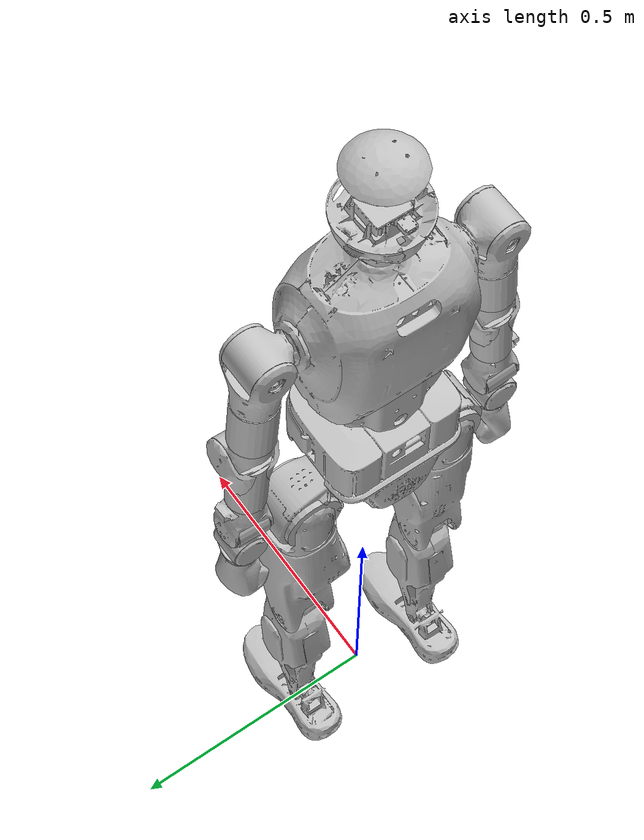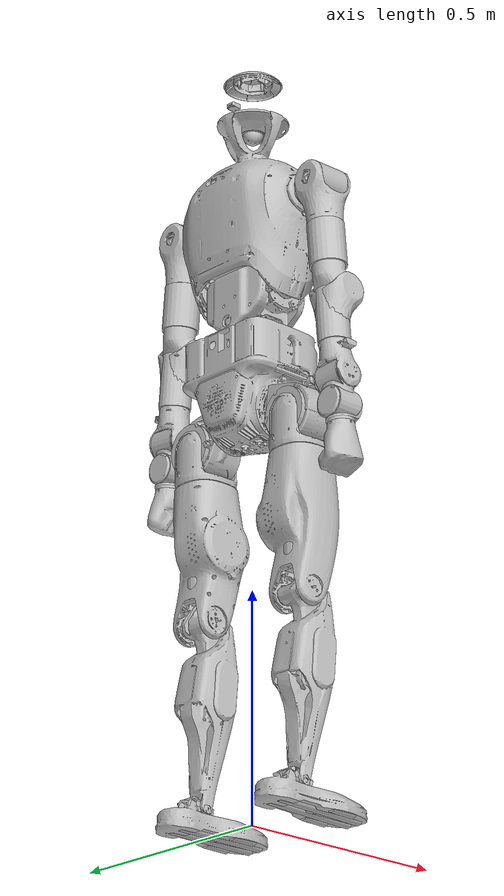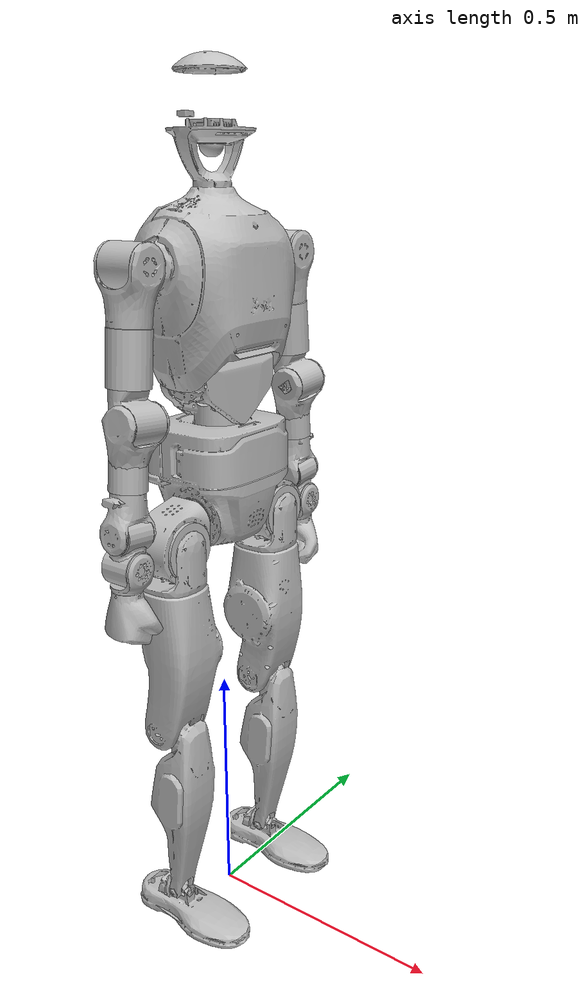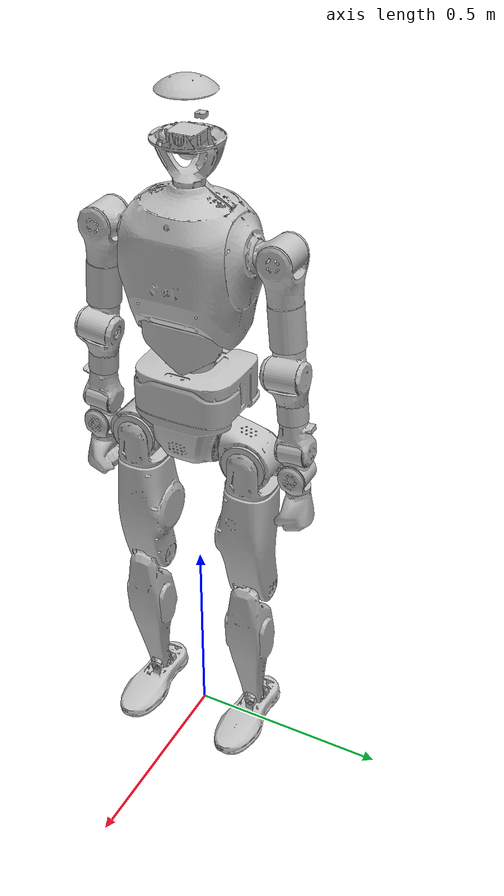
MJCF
<?xml version='1.0' encoding='UTF-8'?>
<mujoco model="tiangong3_29dof">
  <compiler angle="radian" meshdir="meshes/"/>
  <option integrator="implicitfast" timestep="0.001" iterations="100" solver="CG" gravity="0 0 -9.81">
  <flag contact="enable" energy="enable"/>
  </option>
  <default>
    <default class="large_actuator">
      <position kp="2000" kv="100" forcerange="-105 105"/>
    </default>
    <default class="small_actuator">
      <position kp="500" kv="50" forcerange="-52 52"/>
    </default>
  </default>

  <default>
    <default class="arm_motor">
      <joint damping="1" armature="0.1" frictionloss="0.1"/>
    </default>
    <default class="wrist_motor">
      <joint damping="1" armature="0.0236" frictionloss="0.1"/>
    </default>
    <default class="waist_motor">
      <joint damping="1" armature="0.17" frictionloss="0.1"/>
    </default>
    <default class="hip_pitch_motor">
      <joint damping="1" armature="0.24" frictionloss="0.1"/>
    </default>
    <default class="hip_roll_motor">
      <joint damping="1" armature="0.24" frictionloss="0.1"/>
    </default>
    <default class="hip_yaw_motor">
      <joint damping="1" armature="0.18" frictionloss="0.1"/>
    </default>
    <default class="knee_motor">
      <joint damping="1" armature="0.37" frictionloss="0.1"/>
    </default>
    <default class="ankle_motor">
      <joint damping="1" armature="0.032" frictionloss="0.1"/>
    </default>
  </default>

  <actuator><motor name="hip_pitch_l_joint" joint="hip_pitch_l_joint" ctrlrange="-200 200"/><motor name="hip_roll_l_joint" joint="hip_roll_l_joint" ctrlrange="-200 200"/><motor name="hip_yaw_l_joint" joint="hip_yaw_l_joint" ctrlrange="-142 142"/><motor name="knee_pitch_l_joint" joint="knee_pitch_l_joint" ctrlrange="-330 330"/><motor name="ankle_pitch_l_joint" joint="ankle_pitch_l_joint" ctrlrange="-55 55"/><motor name="ankle_roll_l_joint" joint="ankle_roll_l_joint" ctrlrange="-55 55"/><motor name="hip_pitch_r_joint" joint="hip_pitch_r_joint" ctrlrange="-200 200"/><motor name="hip_roll_r_joint" joint="hip_roll_r_joint" ctrlrange="-200 200"/><motor name="hip_yaw_r_joint" joint="hip_yaw_r_joint" ctrlrange="-142 142"/><motor name="knee_pitch_r_joint" joint="knee_pitch_r_joint" ctrlrange="-330 330"/><motor name="ankle_pitch_r_joint" joint="ankle_pitch_r_joint" ctrlrange="-55 55"/><motor name="ankle_roll_r_joint" joint="ankle_roll_r_joint" ctrlrange="-55 55"/><motor name="waist_yaw_joint" joint="waist_yaw_joint" ctrlrange="-91 91"/><motor name="waist_roll_joint" joint="waist_roll_joint" ctrlrange="-150 150"/><motor name="waist_pitch_joint" joint="waist_pitch_joint" ctrlrange="-150 150"/><motor name="shoulder_pitch_l_joint" joint="shoulder_pitch_l_joint" ctrlrange="-90 90"/><motor name="shoulder_roll_l_joint" joint="shoulder_roll_l_joint" ctrlrange="-90 90"/><motor name="shoulder_yaw_l_joint" joint="shoulder_yaw_l_joint" ctrlrange="-50 50"/><motor name="elbow_pitch_l_joint" joint="elbow_pitch_l_joint" ctrlrange="-50 50"/><motor name="elbow_yaw_l_joint" joint="elbow_yaw_l_joint" ctrlrange="-25 25"/><motor name="wrist_pitch_l_joint" joint="wrist_pitch_l_joint" ctrlrange="-25 25"/><motor name="wrist_roll_l_joint" joint="wrist_roll_l_joint" ctrlrange="-25 25"/><motor name="shoulder_pitch_r_joint" joint="shoulder_pitch_r_joint" ctrlrange="-90 90"/><motor name="shoulder_roll_r_joint" joint="shoulder_roll_r_joint" ctrlrange="-90 90"/><motor name="shoulder_yaw_r_joint" joint="shoulder_yaw_r_joint" ctrlrange="-50 50"/><motor name="elbow_pitch_r_joint" joint="elbow_pitch_r_joint" ctrlrange="-50 50"/><motor name="elbow_yaw_r_joint" joint="elbow_yaw_r_joint" ctrlrange="-25 25"/><motor name="wrist_pitch_r_joint" joint="wrist_pitch_r_joint" ctrlrange="-25 25"/><motor name="wrist_roll_r_joint" joint="wrist_roll_r_joint" ctrlrange="-25 25"/></actuator><asset>
    <texture name="texplane" type="2d" builtin="checker" rgb1=".2 .3 .4" rgb2=".1 0.15 0.2" width="512" height="512" mark="cross" markrgb=".8 .8 .8"/>
    <texture name="texplane2" type="2d" builtin="checker" rgb1="1 0.3137 0.1843" rgb2="0.0 0.30196 0.38039" width="512" height="512" mark="cross" markrgb=".8 .8 .8"/>
    <material name="matplane" reflectance="0." texture="texplane" texrepeat="1 1" texuniform="true"/>
    <material name="matplane2" reflectance="0.1" texture="texplane2" texrepeat="1 1" texuniform="true"/>

    <mesh name="pelvis" file="pelvis.STL"/>
    <mesh name="hip_pitch_l_link" file="hip_pitch_l_link.STL"/>
    <mesh name="hip_roll_l_link" file="hip_roll_l_link.STL"/>
    <mesh name="hip_yaw_l_link" file="hip_yaw_l_link.STL"/>
    <mesh name="knee_pitch_l_link" file="knee_pitch_l_link.STL"/>
    <mesh name="ankle_pitch_l_link" file="ankle_pitch_l_link.STL"/>
    <mesh name="ankle_roll_l_link" file="ankle_roll_l_link.STL"/>
    <mesh name="hip_pitch_r_link" file="hip_pitch_r_link.STL"/>
    <mesh name="hip_roll_r_link" file="hip_roll_r_link.STL"/>
    <mesh name="hip_yaw_r_link" file="hip_yaw_r_link.STL"/>
    <mesh name="knee_pitch_r_link" file="knee_pitch_r_link.STL"/>
    <mesh name="ankle_pitch_r_link" file="ankle_pitch_r_link.STL"/>
    <mesh name="ankle_roll_r_link" file="ankle_roll_r_link.STL"/>
    <mesh name="imu_waist_link" file="imu_waist_link.STL"/>
    <mesh name="waist_yaw_link" file="waist_yaw_link.STL"/>
    <mesh name="waist_roll_link" file="waist_roll_link.STL"/>
    <mesh name="waist_pitch_link" file="waist_pitch_link.STL"/>
    <mesh name="camera_body_front_link" file="camera_body_front_link.STL"/>
    <mesh name="imu_head_link" file="imu_head_link.STL"/>
    <mesh name="radar_head_link" file="radar_head_link.STL"/>
    <mesh name="head_yaw_link" file="head_yaw_link.STL"/>
    <mesh name="head_pitch_link" file="head_pitch_link.STL"/>
    <mesh name="camera_head_link" file="camera_head_link.STL"/>
    <mesh name="shoulder_pitch_l_link" file="shoulder_pitch_l_link.STL"/>
    <mesh name="shoulder_roll_l_link" file="shoulder_roll_l_link.STL"/>
    <mesh name="shoulder_yaw_l_link" file="shoulder_yaw_l_link.STL"/>
    <mesh name="elbow_pitch_l_link" file="elbow_pitch_l_link.STL"/>
    <mesh name="elbow_yaw_l_link" file="elbow_yaw_l_link.STL"/>
    <mesh name="wrist_pitch_l_link" file="wrist_pitch_l_link.STL"/>
    <mesh name="wrist_roll_l_link" file="wrist_roll_l_link.STL"/>
    <mesh name="left_tcp_link" file="left_tcp_link.STL"/>
    <mesh name="shoulder_pitch_r_link" file="shoulder_pitch_r_link.STL"/>
    <mesh name="shoulder_roll_r_link" file="shoulder_roll_r_link.STL"/>
    <mesh name="shoulder_yaw_r_link" file="shoulder_yaw_r_link.STL"/>
    <mesh name="elbow_pitch_r_link" file="elbow_pitch_r_link.STL"/>
    <mesh name="elbow_yaw_r_link" file="elbow_yaw_r_link.STL"/>
    <mesh name="wrist_pitch_r_link" file="wrist_pitch_r_link.STL"/>
    <mesh name="wrist_roll_r_link" file="wrist_roll_r_link.STL"/>
    <mesh name="right_tcp_link" file="right_tcp_link.STL"/>
  </asset>

  <worldbody>
    <body name="pelvis" pos="0 0 1">
      <inertial pos="-0.000980697 0.00034548 -0.0546304" quat="0.999055 0.00159355 0.0310332 -0.030378" mass="11.5366" diaginertia="0.0709017 0.0648376 0.0499767"/>
      <joint name="pelvis_to_world_joint" type="free" limited="false" actuatorfrclimited="false"/>
      <geom type="mesh" contype="0" conaffinity="0" group="1" density="0" rgba="0.752941 0.752941 0.752941 1" mesh="pelvis"/>
      <geom type="mesh" rgba="0.752941 0.752941 0.752941 1" mesh="pelvis"/>
      <geom pos="-0.081641 -0.00010952 -0.063057" quat="-2.59903e-06 -0.707565 0.706648 2.59566e-06" type="mesh" contype="0" conaffinity="0" group="1" density="0" rgba="0.752941 0.752941 0.752941 1" mesh="imu_waist_link"/>
      <site name="imu" size="0.01" pos="0.0 0.0 0.0"/>
      <body name="hip_pitch_l_link" pos="-0.00010305 0.076815 -0.11847" quat="0.996195 -0.0871543 -5.84587e-05 0.000668198">
        <inertial pos="0.009185 0.069598 -0.024259" quat="0.850127 0.523369 -0.0526812 -0.0243712" mass="2.37312" diaginertia="0.00506726 0.00389537 0.00347837"/>
        <joint name="hip_pitch_l_joint" class="hip_pitch_motor" pos="0 0 0" axis="0 1 0" range="-3.05433 2.79253"/>
        <geom type="mesh" contype="0" conaffinity="0" group="1" density="0" rgba="0.752941 0.752941 0.752941 1" mesh="hip_pitch_l_link"/>
        <body name="hip_roll_l_link" pos="0 0.073992 -0.026966" quat="0.996195 0.0871543 0 0">
          <inertial pos="-0.001737 -9.9e-05 -0.038553" quat="0.493093 0.509072 0.50841 0.489105" mass="0.539594" diaginertia="0.00168502 0.00140946 0.00104053"/>
          <joint name="hip_roll_l_joint" class="hip_roll_motor" pos="0 0 0" axis="1 0 0" range="-0.418879 2.61799"/>
          <geom type="mesh" contype="0" conaffinity="0" group="1" density="0" rgba="0.752941 0.752941 0.752941 1" mesh="hip_roll_l_link"/>
          <geom size="0.055 0.05" quat="0.707107 0 0.707107 0" type="cylinder" rgba="0.752941 0.752941 0.752941 1"/>
          <body name="hip_yaw_l_link" pos="0 0 -0.0785">
            <inertial pos="0.001492 -0.023508 -0.126309" quat="0.997142 -0.048314 -0.00119644 -0.0580702" mass="5.56215" diaginertia="0.0418929 0.0395442 0.0134839"/>
            <joint name="hip_yaw_l_joint" class="hip_yaw_motor" pos="0 0 0" axis="0 0 1" range="-1.39626 4.45059"/>
            <geom type="mesh" contype="0" conaffinity="0" group="1" density="0" rgba="0.752941 0.752941 0.752941 1" mesh="hip_yaw_l_link"/>
            <geom size="0.04 0.1" pos="0 0 -0.15" type="cylinder" rgba="0.752941 0.752941 0.752941 1"/>
            <body name="knee_pitch_l_link" pos="-0.012927 0 -0.30599" quat="0.999958 0 0.00920887 0">
              <inertial pos="0.024251 0.000717 -0.15523" quat="0.688202 0.0100453 0.0212912 0.725137" mass="2.94534" diaginertia="0.032453 0.0322551 0.00336394"/>
              <joint name="knee_pitch_l_joint" class="knee_motor" pos="0 0 0" axis="0 1 0" range="-0.0872665 2.53073"/>
              <geom type="mesh" contype="0" conaffinity="0" group="1" density="0" rgba="0.752941 0.752941 0.752941 1" mesh="knee_pitch_l_link"/>
              <geom type="mesh" rgba="0.752941 0.752941 0.752941 1" mesh="knee_pitch_l_link"/>
              <body name="ankle_pitch_l_link" pos="0.0073682 0 -0.39993">
                <inertial pos="0 0 0" quat="0 0.707107 0 0.707107" mass="0.142658" diaginertia="4.9e-05 3.2e-05 2.3e-05"/>
                <joint name="ankle_pitch_l_joint" class="ankle_motor" pos="0 0 0" axis="0 1 0" range="-1.18682 0.523599"/>
                <geom type="mesh" contype="0" conaffinity="0" group="1" density="0" rgba="0.752941 0.752941 0.752941 1" mesh="ankle_pitch_l_link"/>
                <body name="ankle_roll_l_link">
                  <inertial pos="0.024536 -1.7e-05 -0.033593" quat="0.000973792 0.727447 0.00122134 0.686162" mass="0.888892" diaginertia="0.00514091 0.004839 0.000764092"/>
                  <joint name="ankle_roll_l_joint" class="ankle_motor" pos="0 0 0" axis="1 0 0" range="-0.523599 0.523599"/>
                  <geom type="mesh" contype="0" conaffinity="0" group="1" density="0" rgba="0.752941 0.752941 0.752941 1" mesh="ankle_roll_l_link"/>
                  <geom name="foot_left_front_outer" size="0.012 0.03" pos="0.085 -0.04 -0.046" quat="0.707105 0 0.707108 0" type="cylinder" rgba="0.752941 0.752941 0.752941 1"/>
                  <geom name="foot_left_front_inner" size="0.012 0.03" pos="0.085 0.04 -0.046" quat="0.707105 0 0.707108 0" type="cylinder" rgba="0.752941 0.752941 0.752941 1"/>
                  <geom name="foot_left_strip_outer" size="0.012 0.11" pos="0.045 -0.015 -0.046" quat="0.707105 0 -0.707108 0" type="cylinder" rgba="0.752941 0.752941 0.752941 1"/>
                  <geom name="foot_left_strip_inner" size="0.012 0.11" pos="0.045 0.015 -0.046" quat="0.707105 0 -0.707108 0" type="cylinder" rgba="0.752941 0.752941 0.752941 1"/>
                </body>
              </body>
            </body>
          </body>
        </body>
      </body>
      <body name="hip_pitch_r_link" pos="0.00010305 -0.076815 -0.11847" quat="0.996195 0.0871543 5.84587e-05 0.000668198">
        <inertial pos="0.009185 -0.069598 -0.024259" quat="0.523369 0.850127 0.0243712 0.0526812" mass="2.37312" diaginertia="0.00506726 0.00389537 0.00347837"/>
        <joint name="hip_pitch_r_joint" class="hip_pitch_motor" pos="0 0 0" axis="0 1 0" range="-3.05433 2.79253"/>
        <geom type="mesh" contype="0" conaffinity="0" group="1" density="0" rgba="0.752941 0.752941 0.752941 1" mesh="hip_pitch_r_link"/>
        <body name="hip_roll_r_link" pos="0 -0.073992 -0.026966" quat="0.996195 -0.0871543 0 0">
          <inertial pos="-0.001737 9.9e-05 -0.038553" quat="0.489105 0.50841 0.509072 0.493093" mass="0.539594" diaginertia="0.00168502 0.00140946 0.00104053"/>
          <joint name="hip_roll_r_joint" class="hip_roll_motor" pos="0 0 0" axis="1 0 0" range="-2.61799 0.418879"/>
          <geom type="mesh" contype="0" conaffinity="0" group="1" density="0" rgba="0.752941 0.752941 0.752941 1" mesh="hip_roll_r_link"/>
          <geom size="0.055 0.05" quat="0.707107 0 0.707107 0" type="cylinder" rgba="0.752941 0.752941 0.752941 1"/>
          <body name="hip_yaw_r_link" pos="0 0 -0.0785">
            <inertial pos="0.001492 0.023508 -0.126309" quat="0.997142 0.048314 -0.00119644 0.0580702" mass="5.56215" diaginertia="0.0418929 0.0395442 0.0134839"/>
            <joint name="hip_yaw_r_joint" class="hip_yaw_motor" pos="0 0 0" axis="0 0 1" range="-4.45059 1.39626"/>
            <geom type="mesh" contype="0" conaffinity="0" group="1" density="0" rgba="0.752941 0.752941 0.752941 1" mesh="hip_yaw_r_link"/>
            <geom size="0.04 0.1" pos="0 0 -0.15" type="cylinder" rgba="0.752941 0.752941 0.752941 1"/>
            <body name="knee_pitch_r_link" pos="-0.012927 0 -0.30599" quat="0.999835 0 0.018192 0">
              <inertial pos="0.024251 -0.000717 -0.15523" quat="0.725137 0.0212912 0.0100453 0.688202" mass="2.94534" diaginertia="0.032453 0.0322551 0.00336394"/>
              <joint name="knee_pitch_r_joint" class="knee_motor" pos="0 0 0" axis="0 1 0" range="-0.0872665 2.53073"/>
              <geom type="mesh" contype="0" conaffinity="0" group="1" density="0" rgba="0.752941 0.752941 0.752941 1" mesh="knee_pitch_r_link"/>
              <geom type="mesh" rgba="0.752941 0.752941 0.752941 1" mesh="knee_pitch_r_link"/>
              <body name="ankle_pitch_r_link" pos="0.014553 0 -0.39974">
                <inertial pos="0 0 0" quat="0 0.707107 0 0.707107" mass="0.142658" diaginertia="4.9e-05 3.2e-05 2.3e-05"/>
                <joint name="ankle_pitch_r_joint" class="ankle_motor" pos="0 0 0" axis="0 1 0" range="-1.18682 0.523599"/>
                <geom type="mesh" contype="0" conaffinity="0" group="1" density="0" rgba="0.752941 0.752941 0.752941 1" mesh="ankle_pitch_r_link"/>
                <body name="ankle_roll_r_link">
                  <inertial pos="0.024536 1.7e-05 -0.033593" quat="-0.000973792 0.727447 -0.00122134 0.686162" mass="0.888892" diaginertia="0.00514091 0.004839 0.000764092"/>
                  <joint name="ankle_roll_r_joint" class="ankle_motor" pos="0 0 0" axis="1 0 0" range="-0.523599 0.523599"/>
                  <geom type="mesh" contype="0" conaffinity="0" group="1" density="0" rgba="0.752941 0.752941 0.752941 1" mesh="ankle_roll_r_link"/>
                  <geom name="foot_right_front_outer" size="0.012 0.03" pos="0.085 -0.04 -0.046" quat="0.707105 0 0.707108 0" type="cylinder" rgba="0.752941 0.752941 0.752941 1"/>
                  <geom name="foot_right_front_inner" size="0.012 0.03" pos="0.085 0.04 -0.046" quat="0.707105 0 0.707108 0" type="cylinder" rgba="0.752941 0.752941 0.752941 1"/>
                  <geom name="foot_right_strip_outer" size="0.012 0.11" pos="0.045 -0.015 -0.046" quat="0.707105 0 -0.707108 0" type="cylinder" rgba="0.752941 0.752941 0.752941 1"/>
                  <geom name="foot_right_strip_inner" size="0.012 0.11" pos="0.045 0.015 -0.046" quat="0.707105 0 -0.707108 0" type="cylinder" rgba="0.752941 0.752941 0.752941 1"/>
                </body>
              </body>
            </body>
          </body>
        </body>
      </body>
      <body name="waist_yaw_link" quat="1 0 0 0.00067075">
        <inertial pos="-0.002204 -0.001068 0.038101" quat="0.608787 -0.063929 -0.10545 0.783691" mass="1.9088" diaginertia="0.00329388 0.00309694 0.00213417"/>
        <joint name="waist_yaw_joint" class="waist_motor" pos="0 0 0" axis="0 0 1" range="-2.61799 3.22886"/>
        <geom type="mesh" contype="0" conaffinity="0" group="1" density="0" rgba="0.752941 0.752941 0.752941 1" mesh="waist_yaw_link"/>
        <body name="waist_roll_link" pos="0 0 0.083796">
          <inertial pos="-0.007616 -0.005361 0.069902" quat="0.496913 0.542577 -0.446994 0.508805" mass="3.99599" diaginertia="0.0166451 0.0163497 0.0089052"/>
          <joint name="waist_roll_joint" class="waist_motor" pos="0 0 0" axis="1 0 0" range="-0.436332 0.436332"/>
          <geom type="mesh" contype="0" conaffinity="0" group="1" density="0" rgba="0.752941 0.752941 0.752941 1" mesh="waist_roll_link"/>
          <body name="waist_pitch_link" pos="0 0 0.078424">
            <inertial pos="0.000506391 0.0013591 0.184511" quat="0.999127 0.00357176 -0.0416188 0.00069048" mass="10.7736" diaginertia="0.180055 0.144522 0.0993568"/>
            <joint name="waist_pitch_joint" class="waist_motor" pos="0 0 0" axis="0 1 0" range="-0.523599 0.872665"/>
            <geom type="mesh" contype="0" conaffinity="0" group="1" density="0" rgba="0.752941 0.752941 0.752941 1" mesh="waist_pitch_link"/>
            <geom type="mesh" rgba="0.752941 0.752941 0.752941 1" mesh="waist_pitch_link"/>
            <geom pos="0.092709 -0.02375 0.039976" quat="0.21264 0.674376 0.674378 0.212641" type="mesh" contype="0" conaffinity="0" group="1" density="0" rgba="0.752941 0.752941 0.752941 1" mesh="camera_body_front_link"/>
            <geom pos="-0.057551 0 0.42777" quat="-2.59734e-06 -0.707105 0.707108 2.59735e-06" type="mesh" contype="0" conaffinity="0" group="1" density="0" rgba="0.752941 0.752941 0.752941 1" mesh="imu_head_link"/>
            <geom pos="0.00022262 0 0.38237" quat="-2.59734e-06 0.707105 0.707108 -2.59735e-06" type="mesh" contype="0" conaffinity="0" group="1" density="0" rgba="0.752941 0.752941 0.752941 1" mesh="radar_head_link"/>
            <body name="shoulder_pitch_l_link" pos="0 0.14552 0.18664" quat="0.999048 0.0436192 0 0">
              <inertial pos="0.007443 0.062042 -2.5e-05" quat="-0.0252848 0.706061 0.0254444 0.707242" mass="0.990828" diaginertia="0.001308 0.0010568 0.000707201"/>
              <joint name="shoulder_pitch_l_joint" class="arm_motor" pos="0 0 0" axis="0 1 0" range="-2.84489 2.84489"/>
              <geom type="mesh" contype="0" conaffinity="0" group="1" density="0" rgba="0.752941 0.752941 0.752941 1" mesh="shoulder_pitch_l_link"/>
              <body name="shoulder_roll_l_link" pos="0 0.0678 0">
                <inertial pos="0.000677 -0.000524 -0.048872" quat="0.704721 0.0414703 0.0493922 0.706547" mass="0.444503" diaginertia="0.00101706 0.000828265 0.000568676"/>
                <joint name="shoulder_roll_l_joint" class="arm_motor" pos="0 0 0" axis="1 0 0" range="-0.191986 3.33358"/>
                <geom type="mesh" contype="0" conaffinity="0" group="1" density="0" rgba="0.752941 0.752941 0.752941 1" mesh="shoulder_roll_l_link"/>
                <body name="shoulder_yaw_l_link" pos="0 0 -0.1004">
                  <inertial pos="0.010088 0.004252 -0.094438" quat="0.997226 0.0281855 -0.0684353 0.00790338" mass="1.53899" diaginertia="0.00868499 0.00814341 0.0012946"/>
                  <joint name="shoulder_yaw_l_joint" class="arm_motor" pos="0 0 0" axis="0 0 1" range="-2.84489 2.84489"/>
                  <geom type="mesh" contype="0" conaffinity="0" group="1" density="0" rgba="0.752941 0.752941 0.752941 1" mesh="shoulder_yaw_l_link"/>
                  <geom size="0.04 0.05" pos="0 0 -0.05" type="cylinder" rgba="0.752941 0.752941 0.752941 1"/>
                  <body name="elbow_pitch_l_link" pos="0.02 0 -0.1596">
                    <inertial pos="-0.017193 0.00062 -0.061208" quat="0.996357 -0.0253784 0.0813669 -0.00269485" mass="0.780806" diaginertia="0.00149977 0.00133837 0.000786854"/>
                    <joint name="elbow_pitch_l_joint" class="arm_motor" pos="0 0 0" axis="0 1 0" range="-2.54818 0.191986"/>
                    <geom type="mesh" contype="0" conaffinity="0" group="1" density="0" rgba="0.752941 0.752941 0.752941 1" mesh="elbow_pitch_l_link"/>
                    <geom size="0.035 0.06" pos="-0.02 0 -0.06" type="cylinder" rgba="0.752941 0.752941 0.752941 1"/>
                    <body name="elbow_yaw_l_link" pos="-0.02 0 -0.104">
                      <inertial pos="-0.000303 0.004732 -0.05189" quat="0.99732 0.0730281 -0.00218161 -0.00391911" mass="0.36493" diaginertia="0.000521012 0.000408496 0.000290492"/>
                      <joint name="elbow_yaw_l_joint" class="arm_motor" pos="0 0 0" axis="0 0 1" range="-2.84489 2.84489"/>
                      <geom type="mesh" contype="0" conaffinity="0" group="1" density="0" rgba="0.752941 0.752941 0.752941 1" mesh="elbow_yaw_l_link"/>
                      <body name="wrist_pitch_l_link" pos="0 0 -0.0944">
                        <inertial pos="-0.000656 -0.000789 -0.02945" quat="0.999659 0.0153663 0.0125731 -0.0169895" mass="1.08923" diaginertia="0.00180068 0.00174888 0.000786449"/>
                        <joint name="wrist_pitch_l_joint" class="wrist_motor" pos="0 0 0" axis="0 1 0" range="-1.32645 1.32645"/>
                        <geom type="mesh" contype="0" conaffinity="0" group="1" density="0" rgba="0.752941 0.752941 0.752941 1" mesh="wrist_pitch_l_link"/>
                        <geom name="wrist_pitch_l_collision_1" size="0.035 0.03" quat="0.499998 0.500002 -0.5 0.5" type="cylinder" rgba="0.752941 0.752941 0.752941 1"/>
                        <geom name="wrist_pitch_l_collision_2" size="0.035 0.03" pos="0 0 -0.062" quat="0.707105 0 -0.707108 0" type="cylinder" rgba="0.752941 0.752941 0.752941 1"/>
                        <body name="wrist_roll_l_link" pos="0 0 -0.062">
                          <inertial pos="0.00653857 -0.00375179 -0.0767757" quat="0.765914 0.0243568 0.103743 0.634051" mass="0.579157" diaginertia="0.00138911 0.00125525 0.000468286"/>
                          <joint name="wrist_roll_l_joint" class="wrist_motor" pos="0 0 0" axis="1 0 0" range="-1.32645 1.32645"/>
                          <geom type="mesh" contype="0" conaffinity="0" group="1" density="0" rgba="0.752941 0.752941 0.752941 1" mesh="wrist_roll_l_link"/>
                          <geom pos="0 0 -0.044" quat="1 0 0 0" type="mesh" contype="0" conaffinity="0" group="1" density="0" rgba="0.752941 0.752941 0.752941 1" mesh="left_tcp_link"/>
                          <geom pos="0 0 -0.044" quat="1 0 0 0" type="mesh" rgba="0.752941 0.752941 0.752941 1" mesh="left_tcp_link"/>
                        </body>
                      </body>
                    </body>
                  </body>
                </body>
              </body>
            </body>
            <body name="shoulder_pitch_r_link" pos="0 -0.14552 0.18664" quat="0.999048 -0.0436192 0 0">
              <inertial pos="0.007443 -0.062042 -2.5e-05" quat="0.0252848 0.706061 -0.0254444 0.707242" mass="0.990828" diaginertia="0.001308 0.0010568 0.000707201"/>
              <joint name="shoulder_pitch_r_joint" class="arm_motor" pos="0 0 0" axis="0 1 0" range="-2.84489 2.84489"/>
              <geom type="mesh" contype="0" conaffinity="0" group="1" density="0" rgba="0.752941 0.752941 0.752941 1" mesh="shoulder_pitch_r_link"/>
              <body name="shoulder_roll_r_link" pos="0 -0.0678 0">
                <inertial pos="0.000677 0.000524 -0.048872" quat="0.706547 0.0493922 0.0414703 0.704721" mass="0.444503" diaginertia="0.00101706 0.000828265 0.000568676"/>
                <joint name="shoulder_roll_r_joint" class="arm_motor" pos="0 0 0" axis="1 0 0" range="-3.33358 0.191986"/>
                <geom type="mesh" contype="0" conaffinity="0" group="1" density="0" rgba="0.752941 0.752941 0.752941 1" mesh="shoulder_roll_r_link"/>
                <body name="shoulder_yaw_r_link" pos="0 0 -0.1004">
                  <inertial pos="0.010088 -0.004252 -0.094438" quat="0.997226 -0.0281855 -0.0684353 -0.00790338" mass="1.53899" diaginertia="0.00868499 0.00814341 0.0012946"/>
                  <joint name="shoulder_yaw_r_joint" class="arm_motor" pos="0 0 0" axis="0 0 1" range="-2.84489 2.84489"/>
                  <geom type="mesh" contype="0" conaffinity="0" group="1" density="0" rgba="0.752941 0.752941 0.752941 1" mesh="shoulder_yaw_r_link"/>
                  <geom size="0.04 0.05" pos="0 0 -0.05" type="cylinder" rgba="0.752941 0.752941 0.752941 1"/>
                  <body name="elbow_pitch_r_link" pos="0.02 0 -0.1596">
                    <inertial pos="-0.017193 -0.00062 -0.061208" quat="0.996357 0.0253784 0.0813669 0.00269485" mass="0.780806" diaginertia="0.00149977 0.00133837 0.000786854"/>
                    <joint name="elbow_pitch_r_joint" class="arm_motor" pos="0 0 0" axis="0 1 0" range="-2.54818 0.191986"/>
                    <geom type="mesh" contype="0" conaffinity="0" group="1" density="0" rgba="0.752941 0.752941 0.752941 1" mesh="elbow_pitch_r_link"/>
                    <geom size="0.035 0.06" pos="-0.02 0 -0.06" type="cylinder" rgba="0.752941 0.752941 0.752941 1"/>
                    <body name="elbow_yaw_r_link" pos="-0.02 0 -0.104">
                      <inertial pos="-0.000303 -0.004732 -0.05189" quat="0.99732 -0.0730281 -0.00218161 0.00391911" mass="0.36493" diaginertia="0.000521012 0.000408496 0.000290492"/>
                      <joint name="elbow_yaw_r_joint" class="arm_motor" pos="0 0 0" axis="0 0 1" range="-2.84489 2.84489"/>
                      <geom type="mesh" contype="0" conaffinity="0" group="1" density="0" rgba="0.752941 0.752941 0.752941 1" mesh="elbow_yaw_r_link"/>
                      <body name="wrist_pitch_r_link" pos="0 0 -0.0944">
                        <inertial pos="-0.000656 0.000789 -0.02945" quat="0.999659 -0.0153663 0.0125731 0.0169895" mass="1.08923" diaginertia="0.00180068 0.00174888 0.000786449"/>
                        <joint name="wrist_pitch_r_joint" class="wrist_motor" pos="0 0 0" axis="0 1 0" range="-1.32645 1.32645"/>
                        <geom type="mesh" contype="0" conaffinity="0" group="1" density="0" rgba="0.752941 0.752941 0.752941 1" mesh="wrist_pitch_r_link"/>
                        <geom size="0.035 0.03" quat="0.499998 0.500002 -0.5 0.5" type="cylinder" rgba="0.752941 0.752941 0.752941 1"/>
                        <geom size="0.035 0.03" pos="0 0 -0.062" quat="0.707105 0 -0.707108 0" type="cylinder" rgba="0.752941 0.752941 0.752941 1"/>
                        <body name="wrist_roll_r_link" pos="0 0 -0.062">
                          <inertial pos="0.00653857 0.00375179 -0.0767757" quat="0.634051 0.103743 0.0243568 0.765914" mass="0.579157" diaginertia="0.00138911 0.00125525 0.000468286"/>
                          <joint name="wrist_roll_r_joint" class="wrist_motor" pos="0 0 0" axis="1 0 0" range="-1.32645 1.32645"/>
                          <geom type="mesh" contype="0" conaffinity="0" group="1" density="0" rgba="0.752941 0.752941 0.752941 1" mesh="wrist_roll_r_link"/>
                          <geom pos="0 0 -0.044" quat="1 0 0 0" type="mesh" contype="0" conaffinity="0" group="1" density="0" rgba="0.752941 0.752941 0.752941 1" mesh="right_tcp_link"/>
                          <geom pos="0 0 -0.044" quat="1 0 0 0" type="mesh" rgba="0.752941 0.752941 0.752941 1" mesh="right_tcp_link"/>
                        </body>
                      </body>
                    </body>
                  </body>
                </body>
              </body>
            </body>
          </body>
        </body>
      </body>
    </body>
  </worldbody>

  <contact>
    <!-- 取消骨盆与髋关节之间的自碰撞（真正带碰撞体的是 hip_roll / hip_yaw） -->
    <exclude body1="pelvis" body2="hip_roll_l_link"/>
    <exclude body1="pelvis" body2="hip_roll_r_link"/>
    <exclude body1="pelvis" body2="hip_yaw_l_link"/>
    <exclude body1="pelvis" body2="hip_yaw_r_link"/>
  </contact>
</mujoco>
